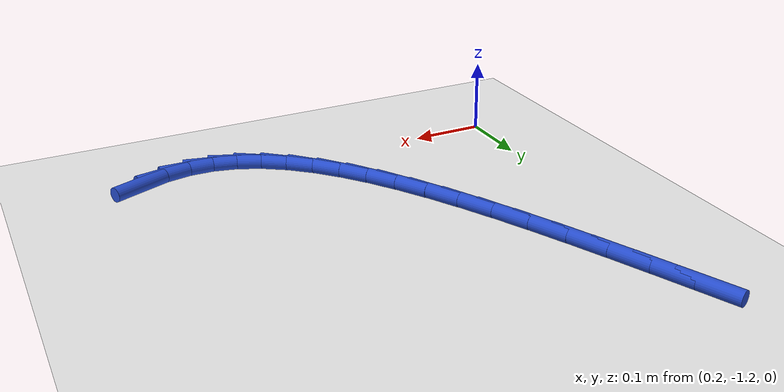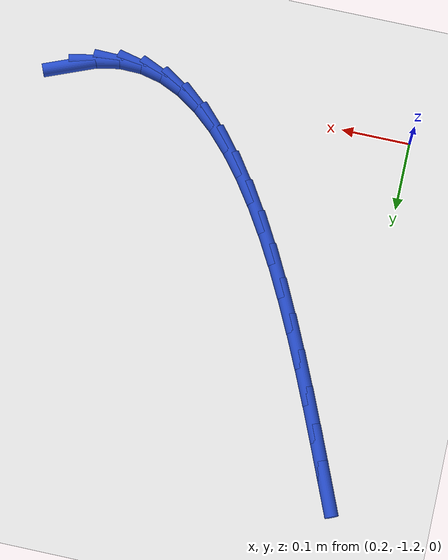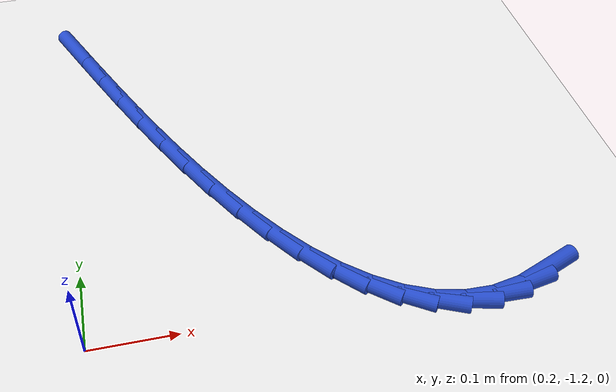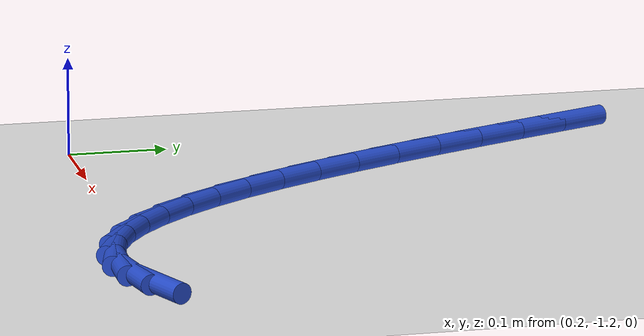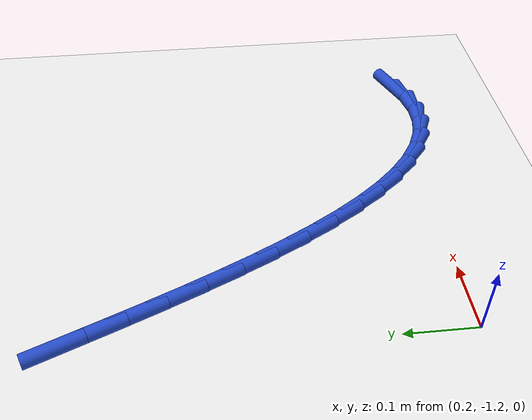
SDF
<sdf version="1.6">
 <world name="default">
  <model name="ground_plane">
   <static>1</static>
   <link name="link">
    <collision name="collision">
     <geometry><plane><normal>0 0 1</normal><size>100 100</size></plane></geometry>
     <surface><friction><ode><mu>100</mu><mu2>50</mu2></ode></friction></surface>
    </collision>
    <visual name="visual">
     <cast_shadows>0</cast_shadows>
     <geometry><plane><normal>0 0 1</normal><size>100 100</size></plane></geometry>
     <material>
      <script><uri>file://media/materials/scripts/gazebo.material</uri><name>Gazebo/WhiteGlow</name></script>
     </material>
    </visual>
   </link>
  </model>
  <model name="line">
   <link name="link_195">
    <pose>0.7074260411509542 -1.2068206151854506 0.01 0 1.57 0.387127743271569</pose>
    <collision name="collision">
     <geometry><cylinder><radius>0.01</radius><length>0.08</length></cylinder></geometry>
    </collision>
    <visual name="visual">
     <material>
      <script><name>Gazebo/Blue</name><uri>file://media/materials/scripts/gazebo.material</uri></script>
     </material>
     <geometry><cylinder><radius>0.01</radius><length>0.08</length></cylinder></geometry>
    </visual>
   </link>
   <link name="link_196">
    <pose>0.6715328054897143 -1.221454333829386 0.01 0 1.57 0.18964967683826883</pose>
    <collision name="collision">
     <geometry><cylinder><radius>0.01</radius><length>0.08</length></cylinder></geometry>
    </collision>
    <visual name="visual">
     <material>
      <script><name>Gazebo/Blue</name><uri>file://media/materials/scripts/gazebo.material</uri></script>
     </material>
     <geometry><cylinder><radius>0.01</radius><length>0.08</length></cylinder></geometry>
    </visual>
   </link>
   <link name="link_197">
    <pose>0.6368615248256786 -1.2281097143411241 0.01 0 1.57 -0.023704977417977446</pose>
    <collision name="collision">
     <geometry><cylinder><radius>0.01</radius><length>0.08</length></cylinder></geometry>
    </collision>
    <visual name="visual">
     <material>
      <script><name>Gazebo/Blue</name><uri>file://media/materials/scripts/gazebo.material</uri></script>
     </material>
     <geometry><cylinder><radius>0.01</radius><length>0.08</length></cylinder></geometry>
    </visual>
   </link>
   <link name="link_198">
    <pose>0.6033711136627957 -1.2273156761649973 0.01 0 1.57 -0.23409439610758997</pose>
    <collision name="collision">
     <geometry><cylinder><radius>0.01</radius><length>0.08</length></cylinder></geometry>
    </collision>
    <visual name="visual">
     <material>
      <script><name>Gazebo/Blue</name><uri>file://media/materials/scripts/gazebo.material</uri></script>
     </material>
     <geometry><cylinder><radius>0.01</radius><length>0.08</length></cylinder></geometry>
    </visual>
   </link>
   <link name="link_199">
    <pose>0.5710204865050128 -1.2196011387453398 0.01 0 1.57 -0.42399088546121994</pose>
    <collision name="collision">
     <geometry><cylinder><radius>0.01</radius><length>0.08</length></cylinder></geometry>
    </collision>
    <visual name="visual">
     <material>
      <script><name>Gazebo/Blue</name><uri>file://media/materials/scripts/gazebo.material</uri></script>
     </material>
     <geometry><cylinder><radius>0.01</radius><length>0.08</length></cylinder></geometry>
    </visual>
   </link>
   <link name="link_200">
    <pose>0.5397685578562765 -1.2054950215264832 0.01 0 1.57 -0.5843074265633452</pose>
    <collision name="collision">
     <geometry><cylinder><radius>0.01</radius><length>0.08</length></cylinder></geometry>
    </collision>
    <visual name="visual">
     <material>
      <script><name>Gazebo/Blue</name><uri>file://media/materials/scripts/gazebo.material</uri></script>
     </material>
     <geometry><cylinder><radius>0.01</radius><length>0.08</length></cylinder></geometry>
    </visual>
   </link>
   <link name="link_201">
    <pose>0.5095742422205338 -1.185526243952761 0.01 0 1.57 -0.7143862006239149</pose>
    <collision name="collision">
     <geometry><cylinder><radius>0.01</radius><length>0.08</length></cylinder></geometry>
    </collision>
    <visual name="visual">
     <material>
      <script><name>Gazebo/Blue</name><uri>file://media/materials/scripts/gazebo.material</uri></script>
     </material>
     <geometry><cylinder><radius>0.01</radius><length>0.08</length></cylinder></geometry>
    </visual>
   </link>
   <link name="link_202">
    <pose>0.4803964541017334 -1.1602237254685073 0.01 0 1.57 -0.8180568287405636</pose>
    <collision name="collision">
     <geometry><cylinder><radius>0.01</radius><length>0.08</length></cylinder></geometry>
    </collision>
    <visual name="visual">
     <material>
      <script><name>Gazebo/Blue</name><uri>file://media/materials/scripts/gazebo.material</uri></script>
     </material>
     <geometry><cylinder><radius>0.01</radius><length>0.08</length></cylinder></geometry>
    </visual>
   </link>
   <link name="link_203">
    <pose>0.452194108003822 -1.1301163855180543 0.01 0 1.57 -0.9003011606943292</pose>
    <collision name="collision">
     <geometry><cylinder><radius>0.01</radius><length>0.08</length></cylinder></geometry>
    </collision>
    <visual name="visual">
     <material>
      <script><name>Gazebo/Blue</name><uri>file://media/materials/scripts/gazebo.material</uri></script>
     </material>
     <geometry><cylinder><radius>0.01</radius><length>0.08</length></cylinder></geometry>
    </visual>
   </link>
   <link name="link_204">
    <pose>0.4249261184307469 -1.095733143545735 0.01 0 1.57 -0.9656618310436248</pose>
    <collision name="collision">
     <geometry><cylinder><radius>0.01</radius><length>0.08</length></cylinder></geometry>
    </collision>
    <visual name="visual">
     <material>
      <script><name>Gazebo/Blue</name><uri>file://media/materials/scripts/gazebo.material</uri></script>
     </material>
     <geometry><cylinder><radius>0.01</radius><length>0.08</length></cylinder></geometry>
    </visual>
   </link>
   <link name="link_205">
    <pose>0.39855139988645527 -1.0576029189958829 0.01 0 1.57 -1.0177841699303125</pose>
    <collision name="collision">
     <geometry><cylinder><radius>0.01</radius><length>0.08</length></cylinder></geometry>
    </collision>
    <visual name="visual">
     <material>
      <script><name>Gazebo/Blue</name><uri>file://media/materials/scripts/gazebo.material</uri></script>
     </material>
     <geometry><cylinder><radius>0.01</radius><length>0.08</length></cylinder></geometry>
    </visual>
   </link>
   <link name="link_206">
    <pose>0.37302886687489417 -1.0162546313128296 0.01 0 1.57 -1.0594359415234125</pose>
    <collision name="collision">
     <geometry><cylinder><radius>0.01</radius><length>0.08</length></cylinder></geometry>
    </collision>
    <visual name="visual">
     <material>
      <script><name>Gazebo/Blue</name><uri>file://media/materials/scripts/gazebo.material</uri></script>
     </material>
     <geometry><cylinder><radius>0.01</radius><length>0.08</length></cylinder></geometry>
    </visual>
   </link>
   <link name="link_207">
    <pose>0.34831743390001196 -0.9722171999409106 0.01 0 1.57 -1.0926643549732769</pose>
    <collision name="collision">
     <geometry><cylinder><radius>0.01</radius><length>0.08</length></cylinder></geometry>
    </collision>
    <visual name="visual">
     <material>
      <script><name>Gazebo/Blue</name><uri>file://media/materials/scripts/gazebo.material</uri></script>
     </material>
     <geometry><cylinder><radius>0.01</radius><length>0.08</length></cylinder></geometry>
    </visual>
   </link>
   <link name="link_208">
    <pose>0.3243760154657554 -0.9260195443244577 0.01 0 1.57 -1.1189591957322218</pose>
    <collision name="collision">
     <geometry><cylinder><radius>0.01</radius><length>0.08</length></cylinder></geometry>
    </collision>
    <visual name="visual">
     <material>
      <script><name>Gazebo/Blue</name><uri>file://media/materials/scripts/gazebo.material</uri></script>
     </material>
     <geometry><cylinder><radius>0.01</radius><length>0.08</length></cylinder></geometry>
    </visual>
   </link>
   <link name="link_209">
    <pose>0.3011635260760719 -0.878190583907804 0.01 0 1.57 -1.1393839134302557</pose>
    <collision name="collision">
     <geometry><cylinder><radius>0.01</radius><length>0.08</length></cylinder></geometry>
    </collision>
    <visual name="visual">
     <material>
      <script><name>Gazebo/Blue</name><uri>file://media/materials/scripts/gazebo.material</uri></script>
     </material>
     <geometry><cylinder><radius>0.01</radius><length>0.08</length></cylinder></geometry>
    </visual>
   </link>
   <link name="link_210">
    <pose>0.2786388802349082 -0.8292592381352815 0.01 0 1.57 -1.154669820702863</pose>
    <collision name="collision">
     <geometry><cylinder><radius>0.01</radius><length>0.08</length></cylinder></geometry>
    </collision>
    <visual name="visual">
     <material>
      <script><name>Gazebo/Blue</name><uri>file://media/materials/scripts/gazebo.material</uri></script>
     </material>
     <geometry><cylinder><radius>0.01</radius><length>0.08</length></cylinder></geometry>
    </visual>
   </link>
   <link name="link_211">
    <pose>0.25676099244621275 -0.7797544264512254 0.01 0 1.57 -1.165277669645913</pose>
    <collision name="collision">
     <geometry><cylinder><radius>0.01</radius><length>0.08</length></cylinder></geometry>
    </collision>
    <visual name="visual">
     <material>
      <script><name>Gazebo/Blue</name><uri>file://media/materials/scripts/gazebo.material</uri></script>
     </material>
     <geometry><cylinder><radius>0.01</radius><length>0.08</length></cylinder></geometry>
    </visual>
   </link>
   <link name="link_212">
    <pose>0.23548877721393233 -0.7302050682999677 0.01 0 1.57 -1.171431311458408</pose>
    <collision name="collision">
     <geometry><cylinder><radius>0.01</radius><length>0.08</length></cylinder></geometry>
    </collision>
    <visual name="visual">
     <material>
      <script><name>Gazebo/Blue</name><uri>file://media/materials/scripts/gazebo.material</uri></script>
     </material>
     <geometry><cylinder><radius>0.01</radius><length>0.08</length></cylinder></geometry>
    </visual>
   </link>
   <link name="link_213">
    <pose>0.21478114904201429 -0.6811400831258412 0.01 0 1.57 -1.1731256023324919</pose>
    <collision name="collision">
     <geometry><cylinder><radius>0.01</radius><length>0.08</length></cylinder></geometry>
    </collision>
    <visual name="visual">
     <material>
      <script><name>Gazebo/Blue</name><uri>file://media/materials/scripts/gazebo.material</uri></script>
     </material>
     <geometry><cylinder><radius>0.01</radius><length>0.08</length></cylinder></geometry>
    </visual>
   </link>
  </model>
 </world>
</sdf>
